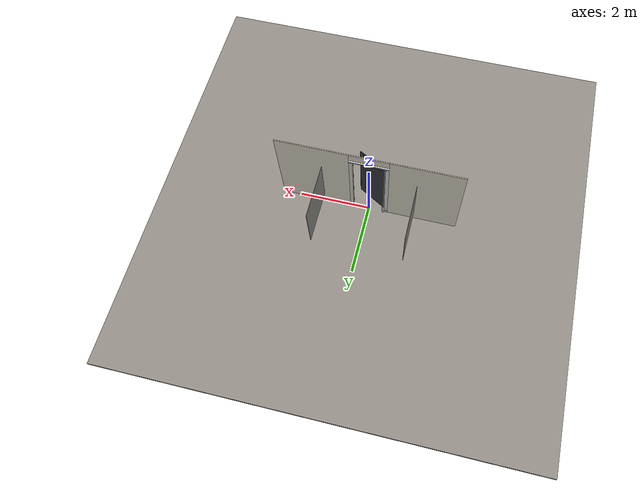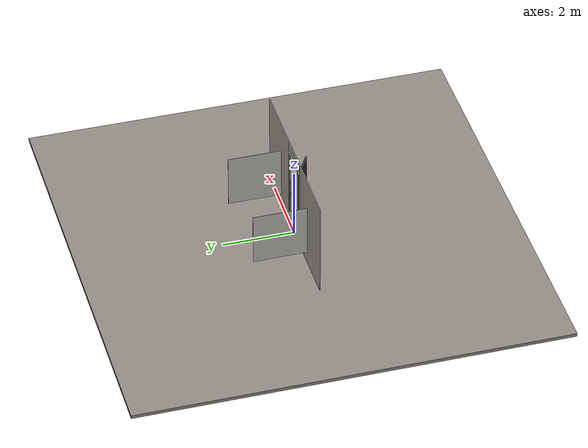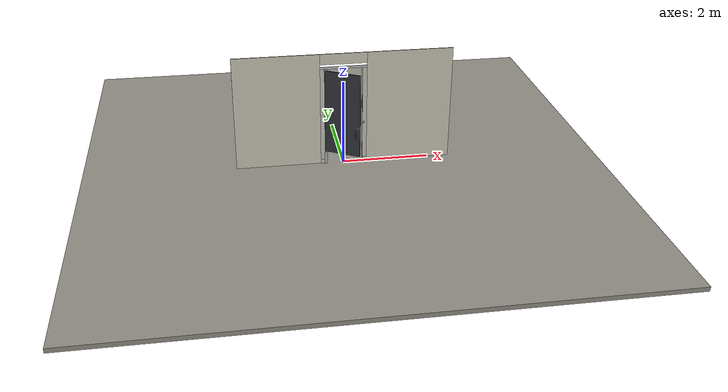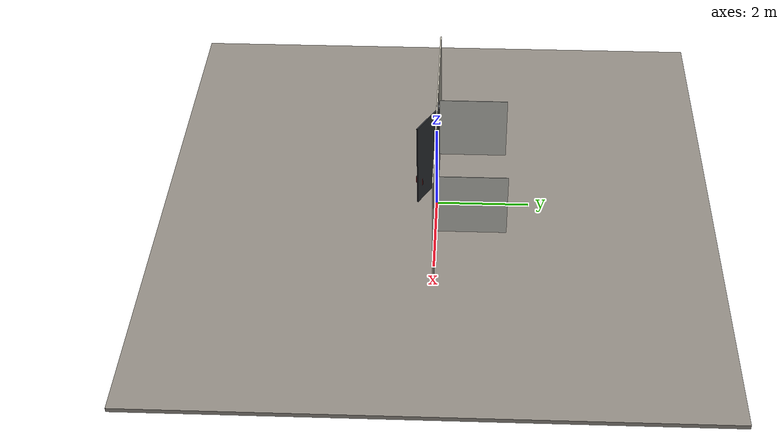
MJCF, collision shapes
<?xml version="1.0" ?>
<mujoco model="db0663_stall_full">
  <compiler angle="radian" meshdir="../../hardware" texturedir="../../textures" autolimits="true" inertiafromgeom="false"/>
  <option timestep="0.002" integrator="implicitfast" cone="elliptic" impratio="10" noslip_iterations="3">
    <flag multiccd="enable"/>
  </option>
  <size memory="16M"/>
  <default>
    <geom condim="4" solref="0.005 1" solimp="0.95 0.99 0.001"/>
    <joint solreflimit="0.005 1" solimplimit="0.95 0.99 0.001"/>
    <tendon solreflimit="0.005 1"/>
    <equality solref="0.002 1"/>
  </default>
  <visual>
    <headlight ambient="0.4 0.4 0.4" diffuse="0.7 0.7 0.7" specular="0.2 0.2 0.2"/>
    <quality shadowsize="4096"/>
    <map znear="0.01" zfar="60"/>
  </visual>
  <asset>
    <mesh name="coat_hook_d622d37ad0" file="coat_hook_d622d37ad0.obj"/>
    <mesh name="pull_1e5d69a91a" file="pull_1e5d69a91a.obj"/>
    <material name="mat_floor" rgba="0.55 0.53 0.5 1" specular="0.2" shininess="0.15" reflectance="0"/>
    <material name="mat_wall" rgba="0.78 0.76 0.7 1" specular="0.2" shininess="0.1" reflectance="0"/>
    <material name="mat_frame" rgba="0.75 0.75 0.72 1" specular="0.2" shininess="0.65" reflectance="0"/>
    <material name="mat_shoe" rgba="0.75 0.76 0.77 1" specular="0.8" shininess="0.65" reflectance="0.4"/>
    <material name="mat_headrail" rgba="0.8 0.81 0.83 1" specular="0.8" shininess="0.6" reflectance="0.4"/>
    <material name="mat_leaf" rgba="0.2 0.21 0.23 1" specular="0.23" shininess="0.43" reflectance="0.02"/>
    <material name="mat_op_stainless" rgba="0.75 0.76 0.77 1" specular="0.8" shininess="0.65" reflectance="0.4"/>
    <material name="mat_hinge" rgba="0.65 0.66 0.68 1" specular="0.74" shininess="0.5" reflectance="0.36"/>
    <texture name="skybox" type="skybox" builtin="gradient" rgb1="0.6 0.7 0.85" rgb2="0.9 0.92 0.95" width="256" height="256"/>
  </asset>
  <worldbody>
    <light name="sun" pos="1.5 -2.5 4" dir="-0.3 0.5 -0.8" directional="true" diffuse="0.8 0.8 0.8" specular="0.3 0.3 0.3" castshadow="true"/>
    <light name="fill" pos="-1.5 2.5 3" dir="0.3 -0.5 -0.7" directional="true" diffuse="0.35 0.35 0.4" castshadow="false"/>
    <camera name="robot_view" pos="0 -2.59375 1.77625" xyaxes="1 0 0 0 0.26963 0.962964" fovy="52"/>
    <camera name="far_view" pos="0 2.59375 1.77625" xyaxes="-1 0 0 0 -0.26963 0.962964" fovy="52"/>
    <camera name="iso" pos="1.97125 -2.17875 2.19125" xyaxes="0.741536 0.670913 0 -0.242917 0.268487 0.932151" fovy="46"/>
    <camera name="detail_handle" pos="0.53 -0.8725 1.13" xyaxes="0.97561 0.219512 0 -0.070934 0.315262 0.94635" fovy="38"/>
    <geom name="floor" type="box" size="6 6 0.05" pos="0 0 -0.05" material="mat_floor" group="0" contype="1" conaffinity="1" friction="0.8 0.005 0.0001" density="2400"/>
    <geom name="wall_left" type="box" size="0.982 0.0125 1.35" pos="-1.518 0 1.35" material="mat_wall" group="0" contype="1" conaffinity="1" friction="0.6 0.005 0.0001" density="800"/>
    <geom name="wall_right" type="box" size="0.982 0.0125 1.35" pos="1.518 0 1.35" material="mat_wall" group="0" contype="1" conaffinity="1" friction="0.6 0.005 0.0001" density="800"/>
    <geom name="wall_header" type="box" size="0.536 0.0125 0.125" pos="0 0 2.575" material="mat_wall" group="0" contype="1" conaffinity="1" friction="0.6 0.005 0.0001" density="800"/>
    <geom name="pilaster_l" type="box" size="0.05 0.0125 1.125" pos="-0.486 0 1.225" material="mat_frame" group="0" contype="1" conaffinity="1" friction="0.6 0.005 0.0001" density="1400"/>
    <geom name="pilaster_shoe_l" type="box" size="0.05 0.0175 0.05" pos="-0.486 0 0.05" material="mat_shoe" group="1" contype="0" conaffinity="0" density="7900"/>
    <geom name="pilaster_r" type="box" size="0.05 0.0125 1.125" pos="0.486 0 1.225" material="mat_frame" group="0" contype="1" conaffinity="1" friction="0.6 0.005 0.0001" density="1400"/>
    <geom name="pilaster_shoe_r" type="box" size="0.05 0.0175 0.05" pos="0.486 0 0.05" material="mat_shoe" group="1" contype="0" conaffinity="0" density="7900"/>
    <geom name="headrail" type="box" size="0.536 0.02 0.02" pos="0 0 2.37" material="mat_headrail" group="0" contype="1" conaffinity="1" friction="0.6 0.005 0.0001" density="2700"/>
    <geom name="partition_l" type="box" size="0.006 0.75 0.75" pos="-1.286 0.75 1.1" material="mat_frame" group="0" contype="1" conaffinity="1" friction="0.6 0.005 0.0001" density="1400"/>
    <geom name="partition_r" type="box" size="0.006 0.75 0.75" pos="1.286 0.75 1.1" material="mat_frame" group="0" contype="1" conaffinity="1" friction="0.6 0.005 0.0001" density="1400"/>
    <geom name="latch_keeper_n" type="box" size="0.02 0.0025 0.02" pos="0.456 -0.028 1" material="mat_op_stainless" group="0" contype="1" conaffinity="1" friction="0.6 0.005 0.0001" density="7900"/>
    <geom name="latch_keeper_p" type="box" size="0.02 0.0025 0.02" pos="0.456 -0.013 1" material="mat_op_stainless" group="0" contype="1" conaffinity="1" friction="0.6 0.005 0.0001" density="7900"/>
    <geom name="latch_keeper_base" type="box" size="0.02 0.01 0.003" pos="0.456 -0.0205 0.976" material="mat_op_stainless" group="0" contype="1" conaffinity="1" friction="0.6 0.005 0.0001" density="7900"/>
    <geom name="stop_strip" type="box" size="0.01 0.006 1" pos="0.426 0.0185 1.3" material="mat_frame" group="0" contype="1" conaffinity="1" friction="0.6 0.005 0.0001" density="1400"/>
    <geom name="pivot_bottom_socket" type="box" size="0.035 0.035 0.154" pos="-0.416 0 0.144" material="mat_hinge" group="1" contype="0" conaffinity="0" density="7850"/>
    <geom name="pivot_top_bracket" type="box" size="0.035 0.035 0.021" pos="-0.416 0 2.329" material="mat_hinge" group="1" contype="0" conaffinity="0" density="7850"/>
    <site name="approach_point" pos="0 -1.2 0" quat="1 0 0 0" size="0.05" rgba="0.2 0.9 0.2 0.5" group="4"/>
    <site name="goal_point" pos="0 1 0" quat="1 0 0 0" size="0.05" rgba="0.2 0.9 0.2 0.5" group="4"/>
    <site name="door_plane_center" pos="0 0 1" quat="1 0 0 0" size="0.02" rgba="0.2 0.9 0.2 0.5" group="4"/>
    <body name="leaf_riser" pos="-0.436 0 0">
      <inertial pos="0 0 0" mass="0.01" quat="1 0 0 0" diaginertia="0.000001 0.000001 0.000001"/>
      <joint name="leaf_rise" type="slide" axis="0 0 1" limited="true" range="0 0.03" damping="1" armature="0.5" ref="0.003333"/>
      <body name="leaf" pos="0 0 0">
        <inertial pos="0.397231 -0.200393 1.28235" mass="20.870229" quat="0.60792 0.345404 -0.616846 0.361428" diaginertia="1.348933777 6.90207883 8.240911317"/>
        <joint name="leaf_hinge" type="hinge" axis="0 0 -1" pos="0.05 0 0" limited="true" range="0 1.919862" damping="0.247579" frictionloss="0.565843" armature="0.02" ref="0.523599"/>
        <geom name="leaf_slab" type="box" size="0.43 0.0125 1" pos="0.384286 -0.193 1.3" quat="0.965926 0 0 -0.258819" material="mat_leaf" group="0" contype="1" conaffinity="1" friction="0.4 0.005 0.0001" density="1"/>
        <geom name="pull_n" type="mesh" mesh="pull_1e5d69a91a" pos="0.681145 -0.378825 0.85" quat="0.683013 0.683013 -0.183013 -0.183013" material="mat_op_stainless" group="1" contype="0" conaffinity="0" density="3000"/>
        <geom name="pull_col_n" type="capsule" size="0.0095 0.08" pos="0.651145 -0.430787 0.85" quat="0.965926 0 0 -0.258819" material="mat_op_stainless" group="3" contype="1" conaffinity="1" rgba="0.8 0.3 0.3 0.25" friction="0.7 0.01 0.0001" density="3000"/>
        <geom name="pull_p" type="mesh" mesh="pull_1e5d69a91a" pos="0.693645 -0.357175 0.85" quat="-0.683013 0.683013 -0.183013 0.183013" material="mat_op_stainless" group="1" contype="0" conaffinity="0" density="3000"/>
        <geom name="pull_col_p" type="capsule" size="0.0095 0.08" pos="0.723645 -0.305213 0.85" quat="0.965926 0 0 -0.258819" material="mat_op_stainless" group="3" contype="1" conaffinity="1" rgba="0.8 0.3 0.3 0.25" friction="0.7 0.01 0.0001" density="3000"/>
        <geom name="slide_latch_plate" type="box" size="0.048 0.001 0.022" pos="0.710956 -0.397191 1" quat="0.965926 0 0 -0.258819" material="mat_op_stainless" group="1" contype="0" conaffinity="0" density="7900"/>
        <geom name="slide_latch_guide_leg_n" type="box" size="0.005 0.0015 0.009" pos="0.725142 -0.41462 0.9835" quat="0.683013 0.683013 -0.183013 -0.183013" material="mat_op_stainless" group="1" contype="0" conaffinity="0" density="7800"/>
        <geom name="slide_latch_guide_leg_p" type="box" size="0.005 0.0015 0.009" pos="0.725142 -0.41462 1.0165" quat="0.683013 0.683013 -0.183013 -0.183013" material="mat_op_stainless" group="1" contype="0" conaffinity="0" density="7800"/>
        <geom name="slide_latch_guide_bridge" type="box" size="0.005 0.018 0.0015" pos="0.721392 -0.421115 1" quat="0.683013 0.683013 -0.183013 -0.183013" material="mat_op_stainless" group="1" contype="0" conaffinity="0" density="7800"/>
        <geom name="coat_hook" type="mesh" mesh="coat_hook_d622d37ad0" pos="0.390536 -0.182175 2.15" quat="-0.683013 0.683013 -0.183013 0.183013" material="mat_op_stainless" group="2" contype="0" conaffinity="0" density="7000"/>
        <geom name="pivot_bottom" type="cylinder" size="0.014 0.004" pos="0.024019 0.015 0.295" quat="0.965926 0 0 -0.258819" material="mat_hinge" group="1" contype="0" conaffinity="0" density="7850"/>
        <geom name="pivot_top" type="cylinder" size="0.014 0.004" pos="0.024019 0.015 2.304" quat="0.965926 0 0 -0.258819" material="mat_hinge" group="1" contype="0" conaffinity="0" density="7850"/>
        <site name="pull_grip_n" pos="0.651145 -0.430787 0.85" quat="0.965926 0 0 -0.258819" size="0.012" rgba="0.2 0.9 0.2 0.5" group="4"/>
        <site name="pull_grip_p" pos="0.723645 -0.305213 0.85" quat="0.965926 0 0 -0.258819" size="0.012" rgba="0.2 0.9 0.2 0.5" group="4"/>
        <body name="slide_latch" pos="0.703125 -0.400754 1" quat="0.965926 0 0 -0.258819">
          <inertial pos="-0.004044 -0.001618 0" mass="0.140251" quat="-0.027514 -0.027514 0.706571 0.706571" diaginertia="0.000009989 0.000084063 0.000085949"/>
          <joint name="slide_latch_slide" type="slide" axis="-1 0 0" limited="true" range="0 0.03" damping="0.5" frictionloss="0.5" armature="0.1" ref="0.03"/>
          <geom name="slide_latch_bar" type="box" size="0.04 0.004 0.012" pos="0 0 0" material="mat_op_stainless" group="0" contype="1" conaffinity="1" friction="0.6 0.005 0.0001" density="7900"/>
          <geom name="slide_latch_knob" type="capsule" size="0.005 0.012" pos="-0.03 -0.012 0" quat="0.707107 0.707107 0 0" material="mat_op_stainless" group="0" contype="1" conaffinity="1" friction="0.6 0.005 0.0001" density="7850"/>
          <site name="grip_latch" pos="-0.03 -0.03 0" quat="1 0 0 0" size="0.01" rgba="0.2 0.9 0.2 0.5" group="4"/>
        </body>
      </body>
    </body>
  </worldbody>
  <equality>
    <joint name="leaf_rise_couple" joint1="leaf_rise" joint2="leaf_hinge" polycoef="0 0.006366 0 0 0" active="true"/>
  </equality>
  <sensor>
    <jointpos name="leaf_hinge_pos" joint="leaf_hinge"/>
    <jointvel name="leaf_hinge_vel" joint="leaf_hinge"/>
    <jointpos name="slide_latch_slide_pos" joint="slide_latch_slide"/>
    <jointvel name="slide_latch_slide_vel" joint="slide_latch_slide"/>
  </sensor>
</mujoco>
